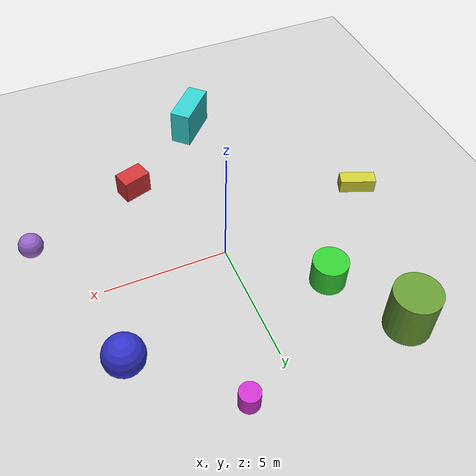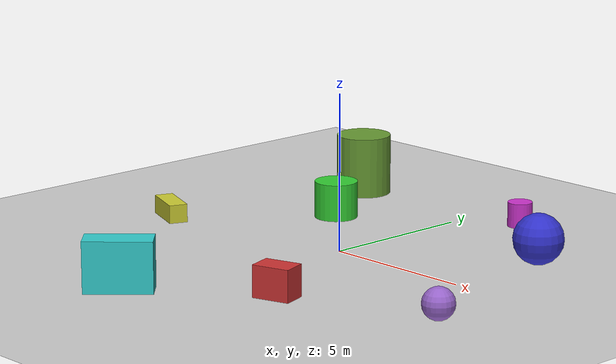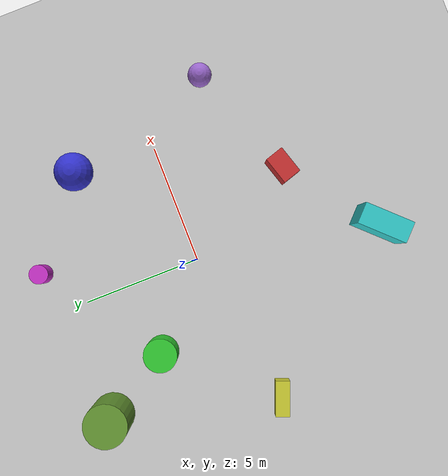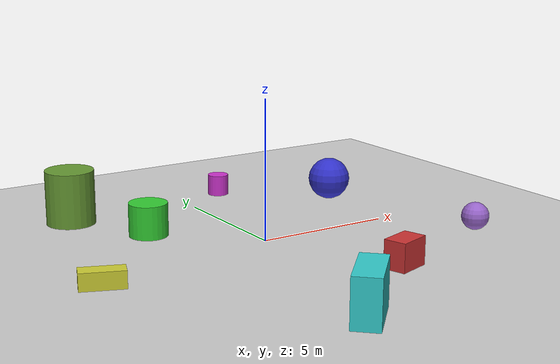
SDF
<?xml version="1.0" ?>
<sdf version="1.6">
  <world name="random_obstacles">
    <include>
      <uri>model://sun</uri>
    </include>
    <include>
      <uri>model://ground_plane</uri>
    </include>

    <!-- Random scattered obstacles -->
    <model name="box1">
      <static>true</static>
      <pose>2.3 -4.7 0.5 0 0 0.3</pose>
      <link name="link">
        <collision name="collision">
          <geometry>
            <box>
              <size>1.2 0.8 1</size>
            </box>
          </geometry>
        </collision>
        <visual name="visual">
          <geometry>
            <box>
              <size>1.2 0.8 1</size>
            </box>
          </geometry>
          <material>
            <ambient>0.8 0.2 0.2 1</ambient>
          </material>
        </visual>
      </link>
    </model>

    <model name="cylinder1">
      <static>true</static>
      <pose>-3.1 2.8 0.6 0 0 0</pose>
      <link name="link">
        <collision name="collision">
          <geometry>
            <cylinder>
              <radius>0.7</radius>
              <length>1.2</length>
            </cylinder>
          </geometry>
        </collision>
        <visual name="visual">
          <geometry>
            <cylinder>
              <radius>0.7</radius>
              <length>1.2</length>
            </cylinder>
          </geometry>
          <material>
            <ambient>0.2 0.8 0.2 1</ambient>
          </material>
        </visual>
      </link>
    </model>

    <model name="sphere1">
      <static>true</static>
      <pose>5.2 3.4 0.8 0 0 0</pose>
      <link name="link">
        <collision name="collision">
          <geometry>
            <sphere>
              <radius>0.8</radius>
            </sphere>
          </geometry>
        </collision>
        <visual name="visual">
          <geometry>
            <sphere>
              <radius>0.8</radius>
            </sphere>
          </geometry>
          <material>
            <ambient>0.2 0.2 0.8 1</ambient>
          </material>
        </visual>
      </link>
    </model>

    <model name="box2">
      <static>true</static>
      <pose>-6.7 -1.2 0.3 0 0 1.2</pose>
      <link name="link">
        <collision name="collision">
          <geometry>
            <box>
              <size>0.6 1.5 0.6</size>
            </box>
          </geometry>
        </collision>
        <visual name="visual">
          <geometry>
            <box>
              <size>0.6 1.5 0.6</size>
            </box>
          </geometry>
          <material>
            <ambient>0.8 0.8 0.2 1</ambient>
          </material>
        </visual>
      </link>
    </model>

    <model name="cylinder2">
      <static>true</static>
      <pose>1.8 6.3 0.4 0 0 0</pose>
      <link name="link">
        <collision name="collision">
          <geometry>
            <cylinder>
              <radius>0.4</radius>
              <length>0.8</length>
            </cylinder>
          </geometry>
        </collision>
        <visual name="visual">
          <geometry>
            <cylinder>
              <radius>0.4</radius>
              <length>0.8</length>
            </cylinder>
          </geometry>
          <material>
            <ambient>0.8 0.2 0.8 1</ambient>
          </material>
        </visual>
      </link>
    </model>

    <model name="box3">
      <static>true</static>
      <pose>-1.4 -7.6 0.8 0 0 0.8</pose>
      <link name="link">
        <collision name="collision">
          <geometry>
            <box>
              <size>2.1 0.9 1.6</size>
            </box>
          </geometry>
        </collision>
        <visual name="visual">
          <geometry>
            <box>
              <size>2.1 0.9 1.6</size>
            </box>
          </geometry>
          <material>
            <ambient>0.2 0.8 0.8 1</ambient>
          </material>
        </visual>
      </link>
    </model>

    <model name="sphere2">
      <static>true</static>
      <pose>7.1 -2.9 0.5 0 0 0</pose>
      <link name="link">
        <collision name="collision">
          <geometry>
            <sphere>
              <radius>0.5</radius>
            </sphere>
          </geometry>
        </collision>
        <visual name="visual">
          <geometry>
            <sphere>
              <radius>0.5</radius>
            </sphere>
          </geometry>
          <material>
            <ambient>0.6 0.4 0.8 1</ambient>
          </material>
        </visual>
      </link>
    </model>

    <model name="cylinder3">
      <static>true</static>
      <pose>-4.8 5.7 1.0 0 0 0</pose>
      <link name="link">
        <collision name="collision">
          <geometry>
            <cylinder>
              <radius>0.9</radius>
              <length>2.0</length>
            </cylinder>
          </geometry>
        </collision>
        <visual name="visual">
          <geometry>
            <cylinder>
              <radius>0.9</radius>
              <length>2.0</length>
            </cylinder>
          </geometry>
          <material>
            <ambient>0.4 0.6 0.2 1</ambient>
          </material>
        </visual>
      </link>
    </model>

  </world>
</sdf>
